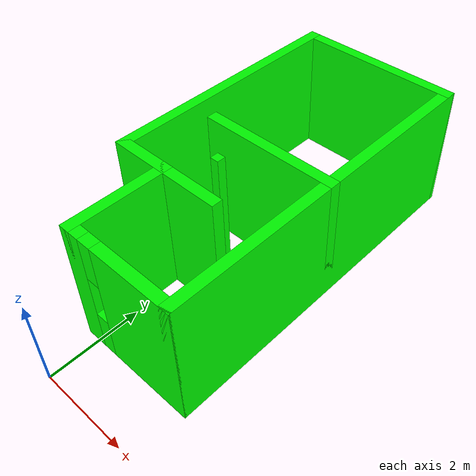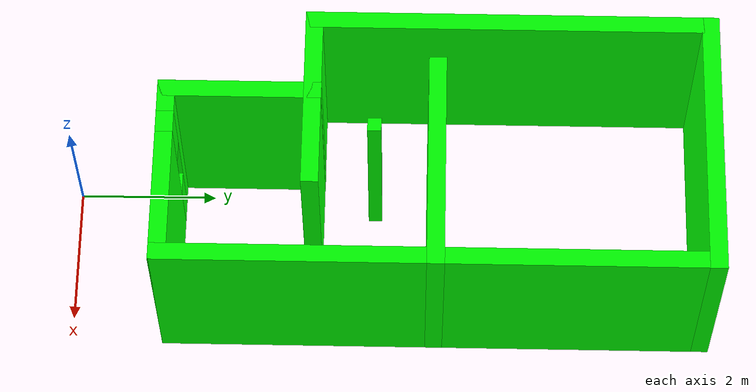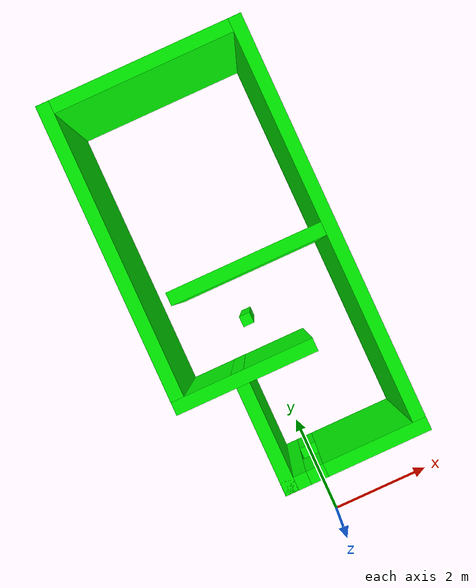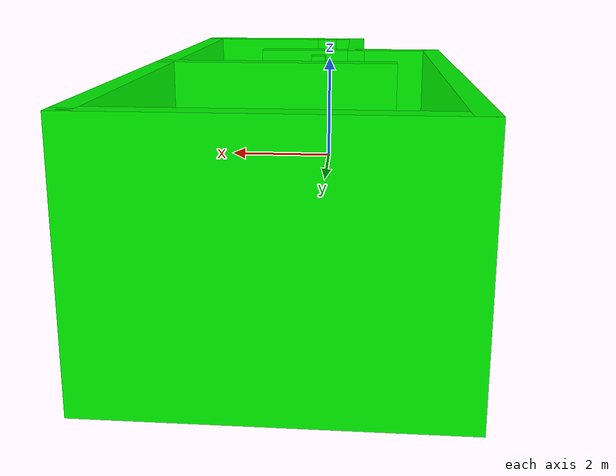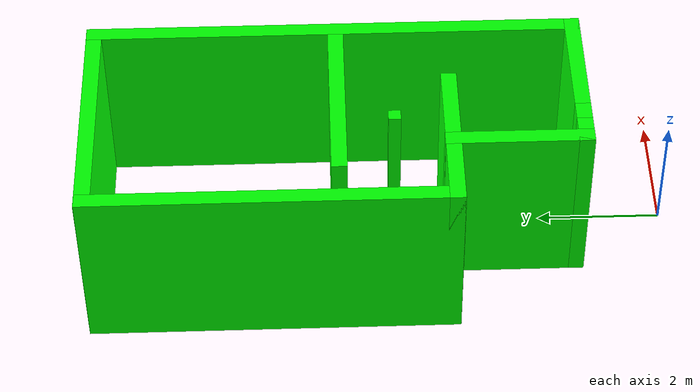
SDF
<?xml version='1.0'?>
<sdf version="1.4">
  <model name="folding_drone_obstacle1">
    <!-- Current propeller size 140 mm wide - becomes drone width -->
    <!-- normal drone size a 442 mm wide -->

    <static>true</static>
    <link name="link1">
      <pose>1.165 1.4 1.0 0 0 0</pose>
      <collision name="collision1">
        <geometry>
          <box>
            <size>2.0 0.254 3</size>
          </box>
        </geometry>
      </collision>
      <visual name="visual1">
        <geometry>
          <box>
            <size>2.0 0.254 3</size>
          </box>
        </geometry>
        <material>
          <ambient>0 1 0 1.0</ambient> <!-- 100% opacity -->
          <diffuse>0 1 0 1.0</diffuse> <!-- 100% opacity -->
        </material>
      </visual>
    </link>
    <link name="link2">
      <pose>-0.417 1.4 1.0 0 0 0</pose>
      <collision name="collision2">
        <geometry>
          <box>
            <size>0.504 0.254 3</size>
          </box>
        </geometry>
      </collision>
      <visual name="visual2">
        <geometry>
          <box>
            <size>0.504 0.254 3</size>
          </box>
        </geometry>
        <material>
          <ambient>0 1 0 1.0</ambient> <!-- 100% opacity -->
          <diffuse>0 1 0 1.0</diffuse> <!-- 100% opacity -->
        </material>
      </visual>
    </link>
    <link name="link2cb">
      <pose>0.0 1.4 0.0 0 0 0</pose>
      <collision name="collision2cb">
        <geometry>
          <box>
            <size>0.33 0.254 1</size>
          </box>
        </geometry>
      </collision>
      <visual name="visual2cb">
        <geometry>
          <box>
            <size>0.33 0.254 1</size>
          </box>
        </geometry>
        <material>
          <ambient>0 1 0 1.0</ambient> <!-- 100% opacity -->
          <diffuse>0 1 0 1.0</diffuse> <!-- 100% opacity -->
        </material>
      </visual>
    </link>
    <link name="link2ct">
      <pose>0.0 1.4 2.0 0 0 0</pose>
      <collision name="collision2ct">
        <geometry>
          <box>
            <size>0.33 0.254 1</size>
          </box>
        </geometry>
      </collision>
      <visual name="visual2ct">
        <geometry>
          <box>
            <size>0.33 0.254 1</size>
          </box>
        </geometry>
        <material>
          <ambient>0 1 0 1.0</ambient> <!-- 100% opacity -->
          <diffuse>0 1 0 1.0</diffuse> <!-- 100% opacity -->
        </material>
      </visual>
    </link>

    <link name="unknown_obstacle">
      <pose>0.0 4.4 1.0 0 0 0</pose>
      <collision name="collisionunknown_obstacle">
        <geometry>
          <box>
            <size>0.2 0.2 3</size>
          </box>
        </geometry>
      </collision>
      <visual name="visualunknown_obstacle">
        <geometry>
          <box>
            <size>0.2 0.2 3</size>
          </box>
        </geometry>
        <material>
          <ambient>0 1 0 1.0</ambient>
          <diffuse>0 1 0 1.0</diffuse>
        </material>
      </visual>
    </link>

    <link name="link3">
      <pose>-0.452 3.497 1.0 0 0 0</pose> <!-- Centered at x=3.0, y=2.0, with its lowest point at z=0.0 -->
      <collision name="collision3">
        <geometry>
          <box>
            <size>2.75 0.254 3.0</size> <!-- Size in x=10 inches, y=10 inches, z=3 m -->
          </box>
        </geometry>
      </collision>
      <visual name="visual3">
        <geometry>
          <box>
            <size>2.75 0.254 3.0</size> <!-- Size in x=10 inches, y=10 inches, z=3 m -->
          </box>
        </geometry>
        <material>
          <ambient>0 1 0 1.0</ambient> <!-- 100% opacity -->
          <diffuse>0 1 0 1.0</diffuse> <!-- 100% opacity -->
        </material>
      </visual>
    </link>
    <link name="link4">
      <pose>2.038 5.3215 1.0 0 0 0</pose> <!-- Positioned at x=5 m, y=3 m, with its bottom touching the floor -->
      <collision name="collision4">
        <geometry>
          <box>
            <size>0.254 8.097 3.0</size> <!-- Size in x=4 m, y=0.254 m, z=3 m -->
          </box>
        </geometry>
      </collision>
      <visual name="visual4">
        <geometry>
          <box>
            <size>0.254 8.097 3.0</size> <!-- Size in x=4 m, y=0.254 m, z=3 m -->
          </box>
        </geometry>
        <material>
          <ambient>0 1 0 1.0</ambient> <!-- 100% opacity -->
          <diffuse>0 1 0 1.0</diffuse> <!-- 100% opacity -->
        </material>
      </visual>
    </link>
    <link name="link5">
      <pose>-0.54 2.450 1.0 0 0 0</pose> <!-- Positioned at x=5 m, y=3 m, with its bottom touching the floor -->
      <collision name="collision5">
        <geometry>
          <box>
            <size>0.254 2.354 3.0</size> <!-- Size in x=4 m, y=0.254 m, z=3 m -->
          </box>
        </geometry>
      </collision>
      <visual name="visual5">
        <geometry>
          <box>
            <size>0.254 2.354 3.0</size> <!-- Size in x=4 m, y=0.254 m, z=3 m -->
          </box>
        </geometry>
        <material>
          <ambient>0 1 0 1.0</ambient> <!-- 100% opacity -->
          <diffuse>0 1 0 1.0</diffuse> <!-- 100% opacity -->
        </material>
      </visual>
    </link>
    <link name="link6">
      <pose>0.53 5.297 1.0 0 0 0</pose> <!-- Positioned at x=5 m, y=3 m, with its bottom touching the floor -->
      <collision name="collision6">
        <geometry>
          <box>
            <size>3.270 0.254 3.0</size> <!-- Size in x=4 m, y=0.254 m, z=3 m -->
          </box>
        </geometry>
      </collision>
      <visual name="visual6">
        <geometry>
          <box>
            <size>3.270 0.254 3.0</size> <!-- Size in x=4 m, y=0.254 m, z=3 m -->
          </box>
        </geometry>
        <material>
          <ambient>0 1 0 1.0</ambient> <!-- 100% opacity -->
          <diffuse>0 1 0 1.0</diffuse> <!-- 100% opacity -->
        </material>
      </visual>
    </link>
    <link name="link7">
      <pose>-1.7 6.37 1.0 0 0 0</pose> <!-- Positioned at x=5 m, y=3 m, with its bottom touching the floor -->
      <collision name="collision7">
        <geometry>
          <box>
            <size>0.254 6.0 3.0</size> <!-- Size in x=4 m, y=0.254 m, z=3 m -->
          </box>
        </geometry>
      </collision>
      <visual name="visual7">
        <geometry>
          <box>
            <size>0.254 6.0 3.0</size> <!-- Size in x=4 m, y=0.254 m, z=3 m -->
          </box>
        </geometry>
        <material>
          <ambient>0 1 0 1.0</ambient> <!-- 100% opacity -->
          <diffuse>0 1 0 1.0</diffuse> <!-- 100% opacity -->
        </material>
      </visual>
    </link>
    <link name="link8">
      <pose>0.169 9.24454 1.0 0 0 0</pose> <!-- Positioned at x=5 m, y=3 m, with its bottom touching the floor -->
      <collision name="collision8">
        <geometry>
          <box>
            <size>3.992 0.254 3.0</size> <!-- Size in x=4 m, y=0.254 m, z=3 m -->
          </box>
        </geometry>
      </collision>
      <visual name="visual8">
        <geometry>
          <box>
            <size>3.992 0.254 3.0</size> <!-- Size in x=4 m, y=0.254 m, z=3 m -->
          </box>
        </geometry>
        <material>
          <ambient>0 1 0 1.0</ambient> <!-- 100% opacity -->
          <diffuse>0 1 0 1.0</diffuse> <!-- 100% opacity -->
        </material>
      </visual>
    </link>
  </model>
</sdf>
